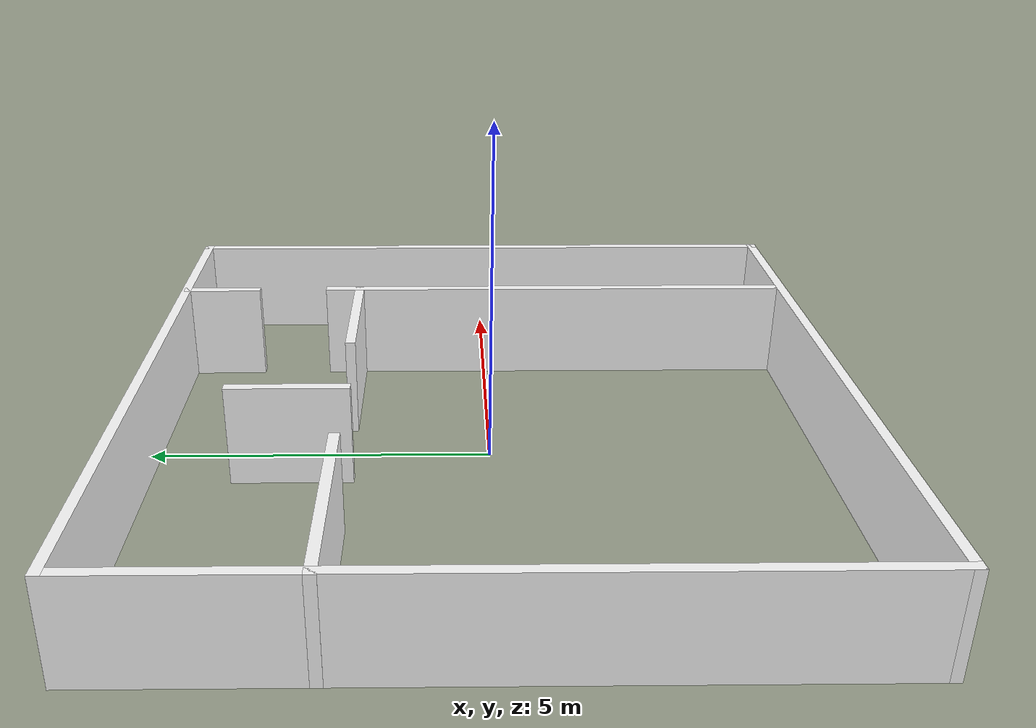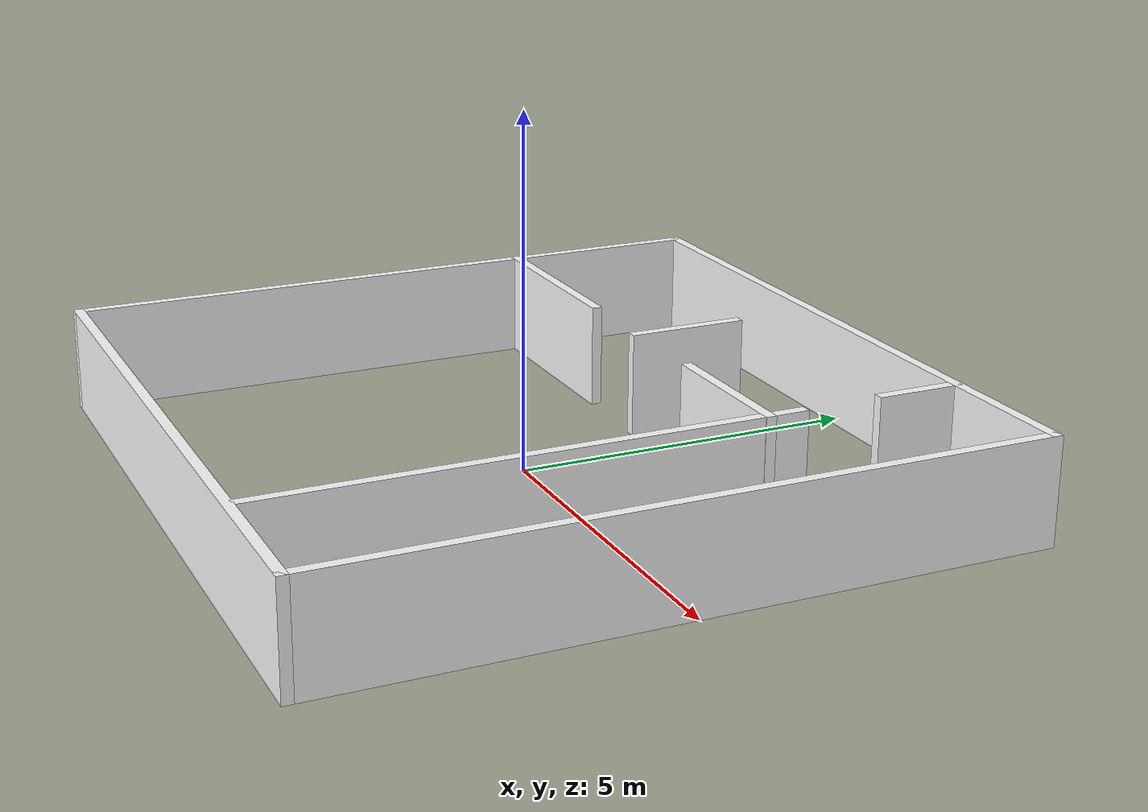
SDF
<?xml version='1.0'?>
<sdf version='1.7'>
  <model name='My_Warehouse_Walls'>
    <pose>0 0 0 0 0 0</pose>
    <link name='Wall_0'>
      <collision name='Wall_0_Collision'>
        <geometry>
          <box>
            <size>10 0.15 1.5</size>
          </box>
        </geometry>
        <pose>0 0 0.75 0 -0 0</pose>
      </collision>
      <visual name='Wall_0_Visual'>
        <pose>0 0 0.75 0 -0 0</pose>
        <geometry>
          <box>
            <size>10 0.15 1.5</size>
          </box>
        </geometry>
	<material>
	  <pbr>
	    <metal>
	      <albedo_map>model://materials/textures/wall.png</albedo_map>
	      <roughness>1.0</roughness>
	      <metalness>0.0</metalness>
	    </metal>
	  </pbr>
	  <ambient>1 1 1 1</ambient>
	  <diffuse>1 1 1 1</diffuse>
	</material>
        <meta>
          <layer>0</layer>
        </meta>
      </visual>
      <pose>0.001 4.925 0 0 -0 0</pose>
    </link>
    <link name='Wall_1'>
      <collision name='Wall_1_Collision'>
        <geometry>
          <box>
            <size>10 0.15 1.5</size>
          </box>
        </geometry>
        <pose>0 0 0.75 0 -0 0</pose>
      </collision>
      <visual name='Wall_1_Visual'>
        <pose>0 0 0.75 0 -0 0</pose>
        <geometry>
          <box>
            <size>10 0.15 1.5</size>
          </box>
        </geometry>
	<material>
	  <pbr>
	    <metal>
	      <albedo_map>model://materials/textures/wall.png</albedo_map>
	      <roughness>1.0</roughness>
	      <metalness>0.0</metalness>
	    </metal>
	  </pbr>
	  <ambient>1 1 1 1</ambient>
	  <diffuse>1 1 1 1</diffuse>
	</material>
        <meta>
          <layer>0</layer>
        </meta>
      </visual>
      <pose>4.926 -0 0 0 -0 -1.5708</pose>
    </link>
    <link name='Wall_11'>
      <collision name='Wall_11_Collision'>
        <geometry>
          <box>
            <size>3 0.15 1.5</size>
          </box>
        </geometry>
        <pose>0 0 0.75 0 -0 0</pose>
      </collision>
      <visual name='Wall_11_Visual'>
        <pose>0 0 0.75 0 -0 0</pose>
        <geometry>
          <box>
            <size>3 0.15 1.5</size>
          </box>
        </geometry>
	<material>
	  <pbr>
	    <metal>
	      <albedo_map>model://materials/textures/wall.png</albedo_map>
	      <roughness>1.0</roughness>
	      <metalness>0.0</metalness>
	    </metal>
	  </pbr>
	  <ambient>1 1 1 1</ambient>
	  <diffuse>1 1 1 1</diffuse>
	</material>
        <meta>
          <layer>0</layer>
        </meta>
      </visual>
      <pose>-3.501 2.069 0 0 -0 0</pose>
    </link>
    <link name='Wall_2'>
      <collision name='Wall_2_Collision'>
        <geometry>
          <box>
            <size>10 0.15 1.5</size>
          </box>
        </geometry>
        <pose>0 0 0.75 0 -0 0</pose>
      </collision>
      <visual name='Wall_2_Visual'>
        <pose>0 0 0.75 0 -0 0</pose>
        <geometry>
          <box>
            <size>10 0.15 1.5</size>
          </box>
        </geometry>
	<material>
	  <pbr>
	    <metal>
	      <albedo_map>model://materials/textures/wall.png</albedo_map>
	      <roughness>1.0</roughness>
	      <metalness>0.0</metalness>
	    </metal>
	  </pbr>
	  <ambient>1 1 1 1</ambient>
	  <diffuse>1 1 1 1</diffuse>
	</material>
        <meta>
          <layer>0</layer>
        </meta>
      </visual>
      <pose>0.001 -4.925 0 0 -0 3.14159</pose>
    </link>
    <link name='Wall_23'>
      <collision name='Wall_23_Collision'>
        <geometry>
          <box>
            <size>7.5 0.15 1.5</size>
          </box>
        </geometry>
        <pose>0 0 0.75 0 -0 0</pose>
      </collision>
      <visual name='Wall_23_Visual'>
        <pose>0 0 0.75 0 -0 0</pose>
        <geometry>
          <box>
            <size>7.5 0.15 1.5</size>
          </box>
        </geometry>
	<material>
	  <pbr>
	    <metal>
	      <albedo_map>model://materials/textures/wall.png</albedo_map>
	      <roughness>1.0</roughness>
	      <metalness>0.0</metalness>
	    </metal>
	  </pbr>
	  <ambient>1 1 1 1</ambient>
	  <diffuse>1 1 1 1</diffuse>
	</material>
        <meta>
          <layer>0</layer>
        </meta>
      </visual>
      <pose>2.919 -1.13 0 0 -0 -1.5708</pose>
    </link>
    <link name='Wall_25'>
      <collision name='Wall_25_Collision'>
        <geometry>
          <box>
            <size>1.25 0.15 1.5</size>
          </box>
        </geometry>
        <pose>0 0 0.75 0 -0 0</pose>
      </collision>
      <visual name='Wall_25_Visual'>
        <pose>0 0 0.75 0 -0 0</pose>
        <geometry>
          <box>
            <size>1.25 0.15 1.5</size>
          </box>
        </geometry>
	<material>
	  <pbr>
	    <metal>
	      <albedo_map>model://materials/textures/wall.png</albedo_map>
	      <roughness>1.0</roughness>
	      <metalness>0.0</metalness>
	    </metal>
	  </pbr>
	  <ambient>1 1 1 1</ambient>
	  <diffuse>1 1 1 1</diffuse>
	</material>
        <meta>
          <layer>0</layer>
        </meta>
      </visual>
      <pose>2.892 4.336 0 0 -0 -1.5708</pose>
    </link>
    <link name='Wall_29'>
      <collision name='Wall_29_Collision'>
        <geometry>
          <box>
            <size>2.25 0.15 1.5</size>
          </box>
        </geometry>
        <pose>0 0 0.75 0 -0 0</pose>
      </collision>
      <visual name='Wall_29_Visual'>
        <pose>0 0 0.75 0 -0 0</pose>
        <geometry>
          <box>
            <size>2.25 0.15 1.5</size>
          </box>
        </geometry>
	<material>
	  <pbr>
	    <metal>
	      <albedo_map>model://materials/textures/wall.png</albedo_map>
	      <roughness>1.0</roughness>
	      <metalness>0.0</metalness>
	    </metal>
	  </pbr>
	  <ambient>1 1 1 1</ambient>
	  <diffuse>1 1 1 1</diffuse>
	</material>
        <meta>
          <layer>0</layer>
        </meta>
      </visual>
      <pose>1.875 2.069 0 0 -0 0</pose>
    </link>
    <link name='Wall_3'>
      <collision name='Wall_3_Collision'>
        <geometry>
          <box>
            <size>10 0.15 1.5</size>
          </box>
        </geometry>
        <pose>0 0 0.75 0 -0 0</pose>
      </collision>
      <visual name='Wall_3_Visual'>
        <pose>0 0 0.75 0 -0 0</pose>
        <geometry>
          <box>
            <size>10 0.15 1.5</size>
          </box>
        </geometry>
	<material>
	  <pbr>
	    <metal>
	      <albedo_map>model://materials/textures/wall.png</albedo_map>
	      <roughness>1.0</roughness>
	      <metalness>0.0</metalness>
	    </metal>
	  </pbr>
	  <ambient>1 1 1 1</ambient>
	  <diffuse>1 1 1 1</diffuse>
	</material>
        <meta>
          <layer>0</layer>
        </meta>
      </visual>
      <pose>-4.924 -0 0 0 -0 1.5708</pose>
    </link>

    <link name='Wall_31'>
      <collision name='Wall_31_Collision'>
        <geometry>
          <box>
            <size>1.75 0.15 1.5</size>
          </box>
        </geometry>
        <pose>0 0 0.75 0 -0 0</pose>
      </collision>
      <visual name='Wall_31_Visual'>
        <pose>0 0 0.75 0 -0 0</pose>
        <geometry>
          <box>
            <size>1.75 0.15 1.5</size>
          </box>
        </geometry>
	<material>
	  <pbr>
	    <metal>
	      <albedo_map>model://materials/textures/wall.png</albedo_map>
	      <roughness>1.0</roughness>
	      <metalness>0.0</metalness>
	    </metal>
	  </pbr>
	  <ambient>1 1 1 1</ambient>
	  <diffuse>1 1 1 1</diffuse>
	</material>
        <meta>
          <layer>0</layer>
        </meta>
      </visual>
      <pose>-0.678 2.836 0 0 -0 -1.5708</pose>
    </link>
    <static>1</static>
  </model>
</sdf>
